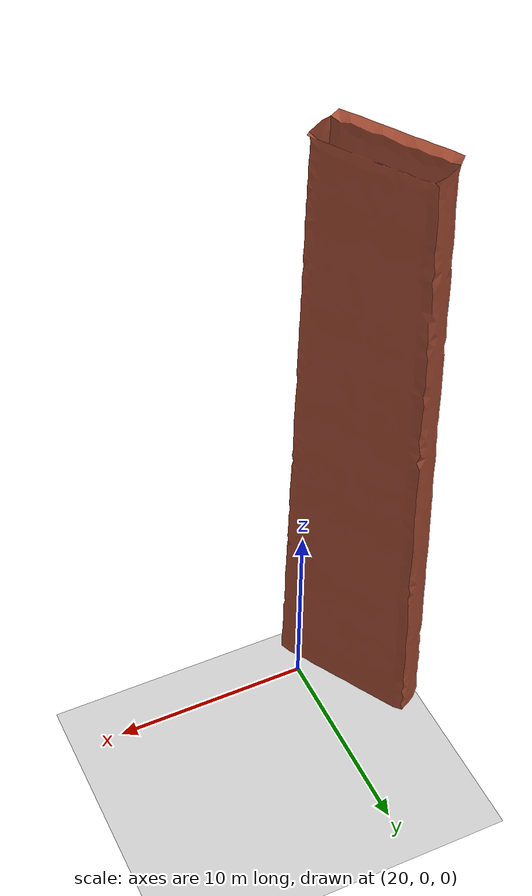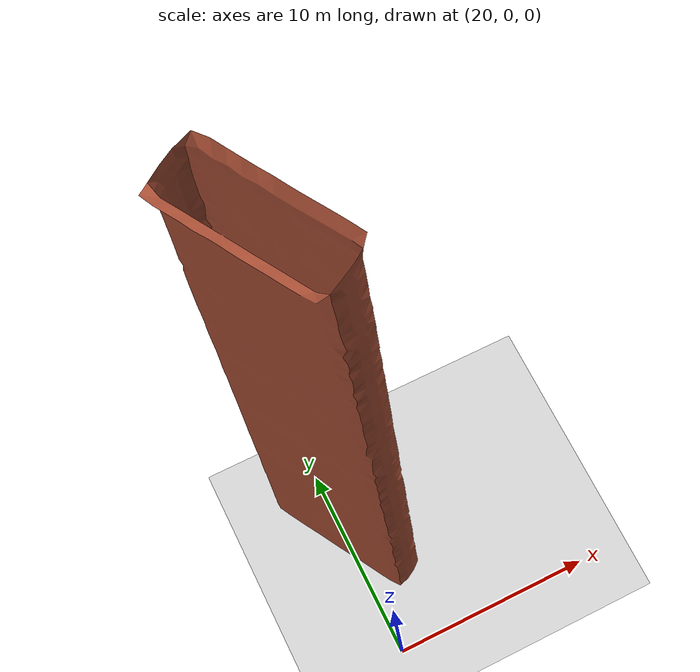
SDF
<?xml version="1.0" ?>
<sdf version="1.5">
  <world name="default">
    <scene>
	<ambient>255 255 255 255</ambient>
    </scene>
    <light name='sun' type='directional'>
      <cast_shadows>1</cast_shadows>
      <pose frame=''>5 5 10 0 -0 0</pose>
      <diffuse>0.8 0.8 0.8 1</diffuse>
      <specular>0.2 0.2 0.2 1</specular>
      <attenuation>
        <range>1000</range>
        <constant>0.9</constant>
        <linear>0.01</linear>
        <quadratic>0.001</quadratic>
      </attenuation>
      <direction>0.5 0.1 -0.9</direction>
    </light>

    <!-- A ground plane -->
    <include>
      <uri>model://ground_plane</uri>
    </include>
    <include>
      <uri>model://asphalt_plane</uri>
    </include>
    <include>
      <uri>model://pillar</uri>
    </include>
    <physics name='default_physics' default='0' type='ode'>
      <gravity>0 0 -9.8066</gravity>
      <ode>
        <solver>
          <type>quick</type>
          <iters>10</iters>
          <sor>1.3</sor>
          <use_dynamic_moi_rescaling>0</use_dynamic_moi_rescaling>
        </solver>
        <constraints>
          <cfm>0</cfm>
          <erp>0.2</erp>
          <contact_max_correcting_vel>100</contact_max_correcting_vel>
          <contact_surface_layer>0.001</contact_surface_layer>
        </constraints>
      </ode>
      <max_step_size>0.004</max_step_size>
      <real_time_factor>1.0</real_time_factor>
      <real_time_update_rate>250</real_time_update_rate>
      <magnetic_field>6.0e-6 2.3e-5 -4.2e-5</magnetic_field>
    </physics>
  </world>
</sdf>

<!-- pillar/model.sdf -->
<sdf version="1.4">
  <model name="pillar">
    <pose>0 0 0 0 0 0</pose>
    <static>true</static>
    <link name="link_plant">
      <visual name="visual">
        <geometry>
          <mesh>
	    <uri>model://pillar/meshes/pillar.dae</uri>
            <scale>1 1 1</scale>
          </mesh>
        </geometry>
        <material>
	  <!--shader type='pixel'/-->
          <script>
            <uri>file://media/materials/scripts/gazebo.material</uri>
            <name>Gazebo/Bricks</name>
          </script>
        </material>
      </visual>
    </link>

  </model>
</sdf>
